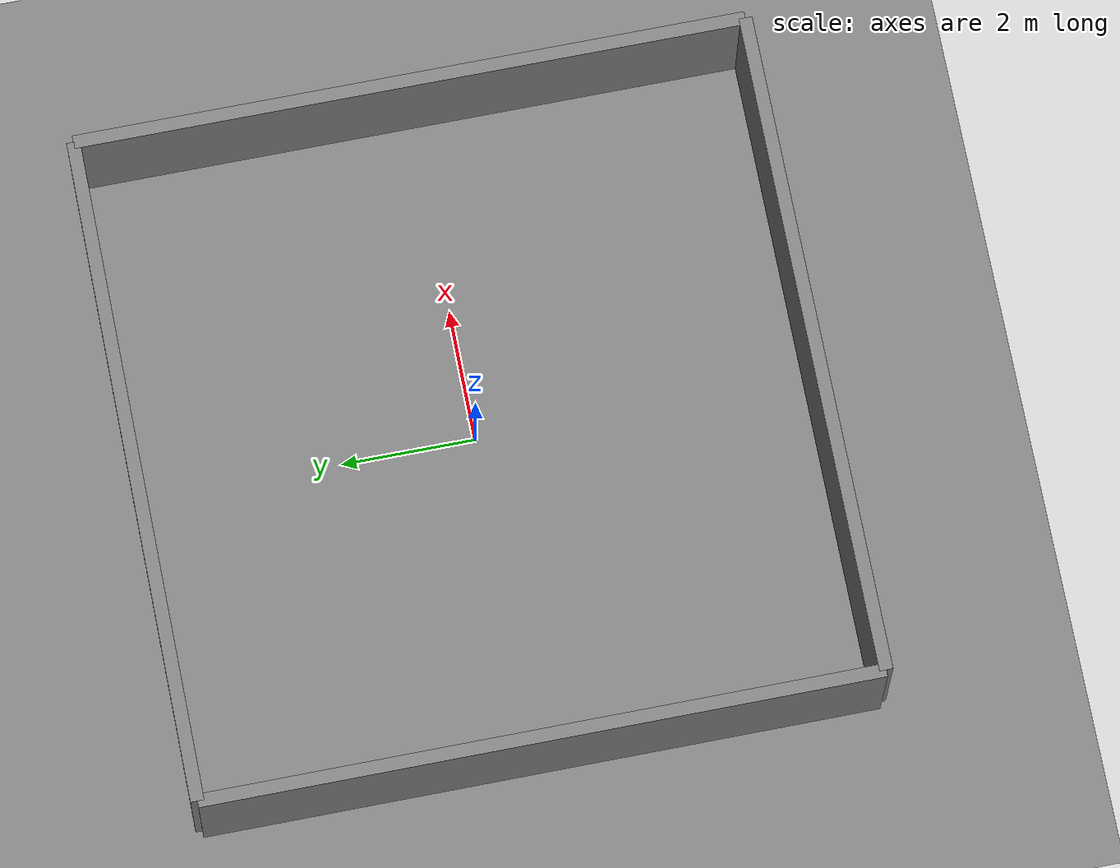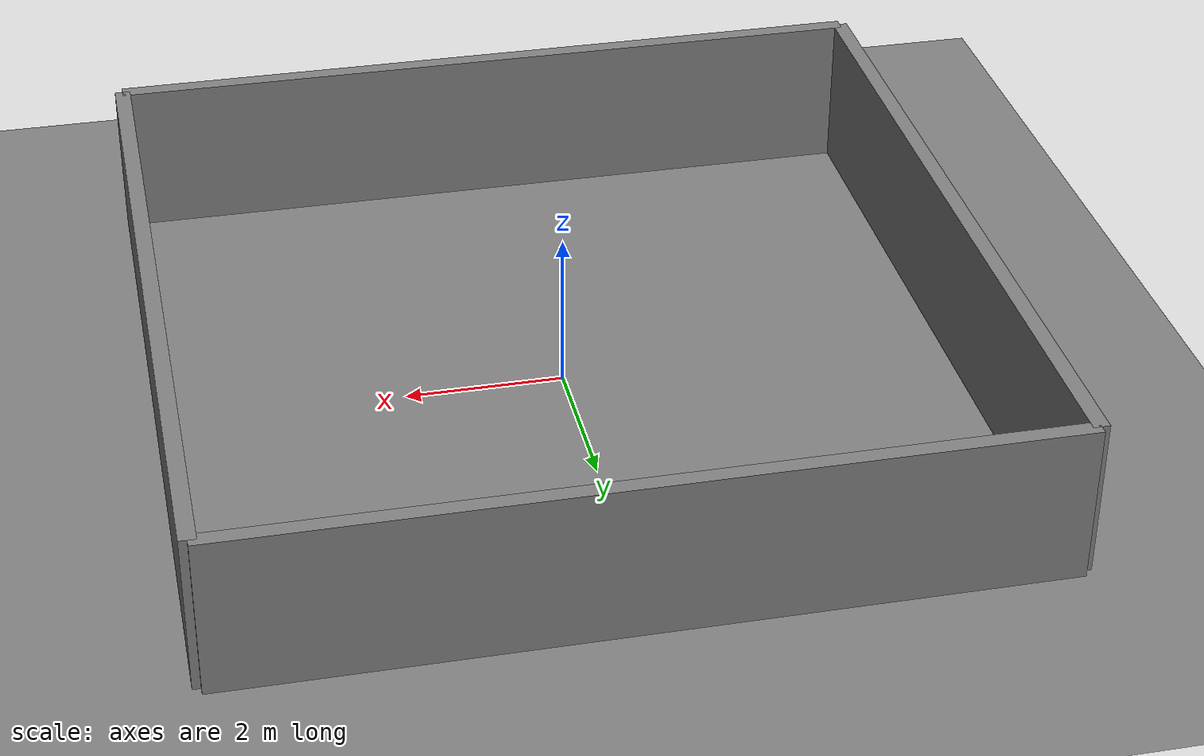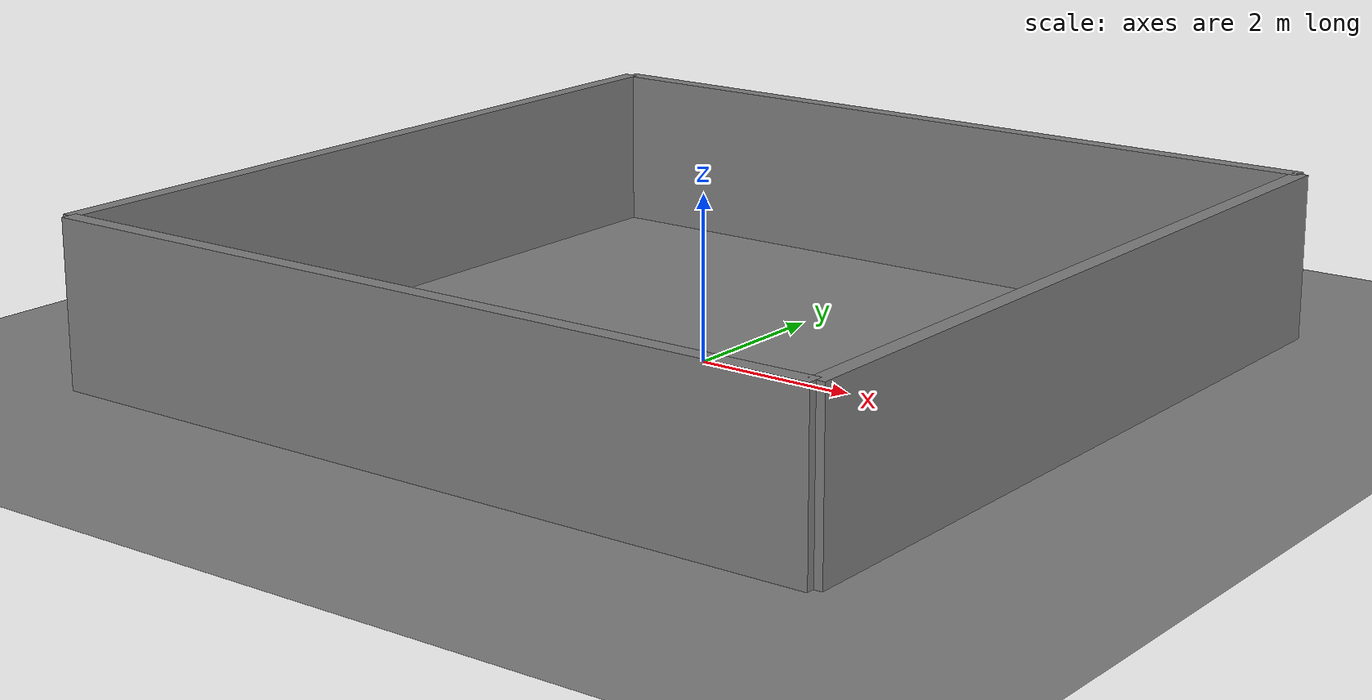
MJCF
<mujoco model="open_room">
  <worldbody>
    <light pos="0 0 4" dir="0 0 -1" diffuse=".8 .8 .8"/>
    <geom name="floor" type="plane" size="8 8 .05"/>
    <geom name="wall_n" type="box" pos="0  5 1" size="5 .1 1"/>
    <geom name="wall_s" type="box" pos="0 -5 1" size="5 .1 1"/>
    <geom name="wall_e" type="box" pos=" 5 0 1" size=".1 5 1"/>
    <geom name="wall_w" type="box" pos="-5 0 1" size=".1 5 1"/>
  </worldbody>
</mujoco>
